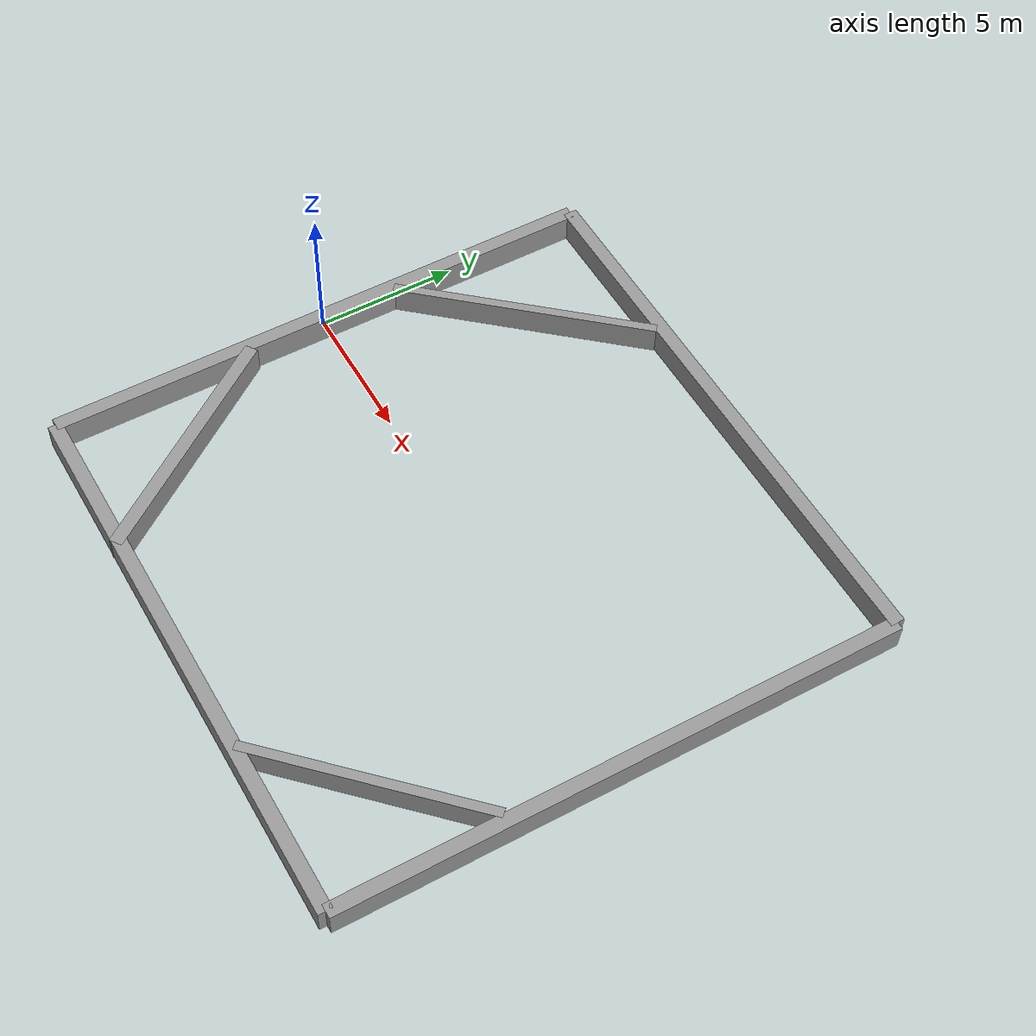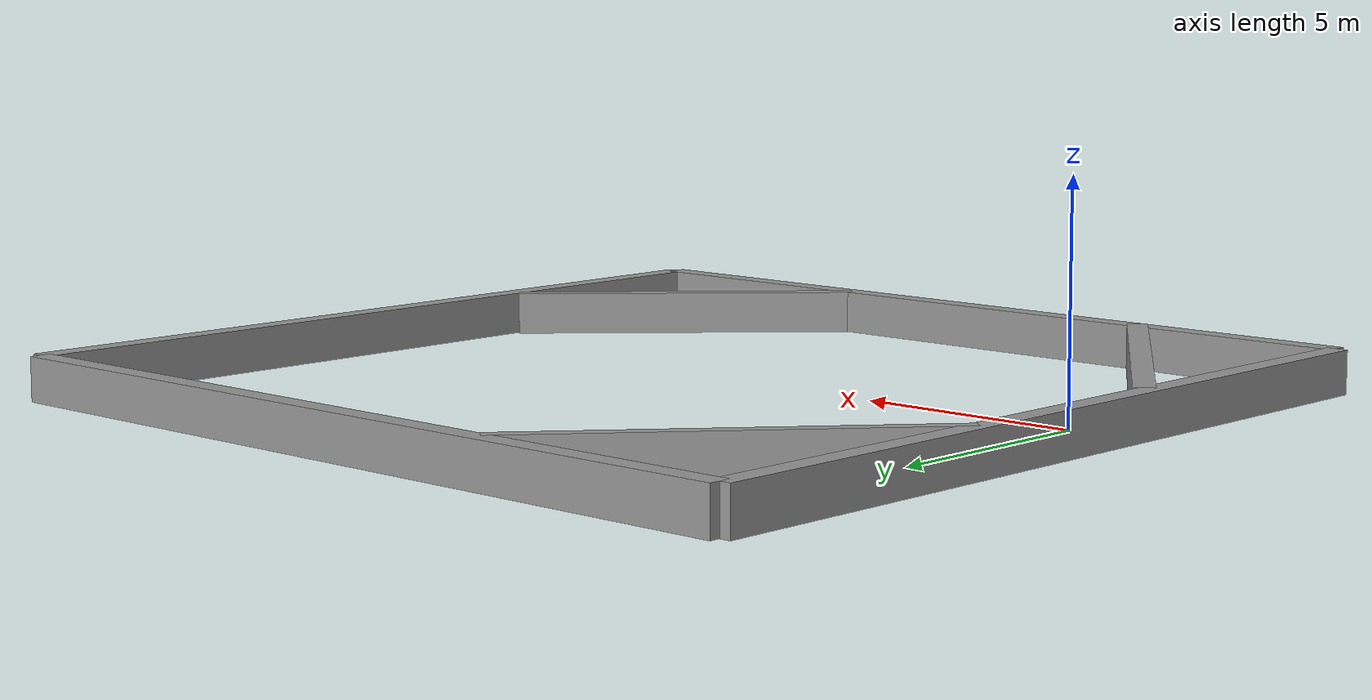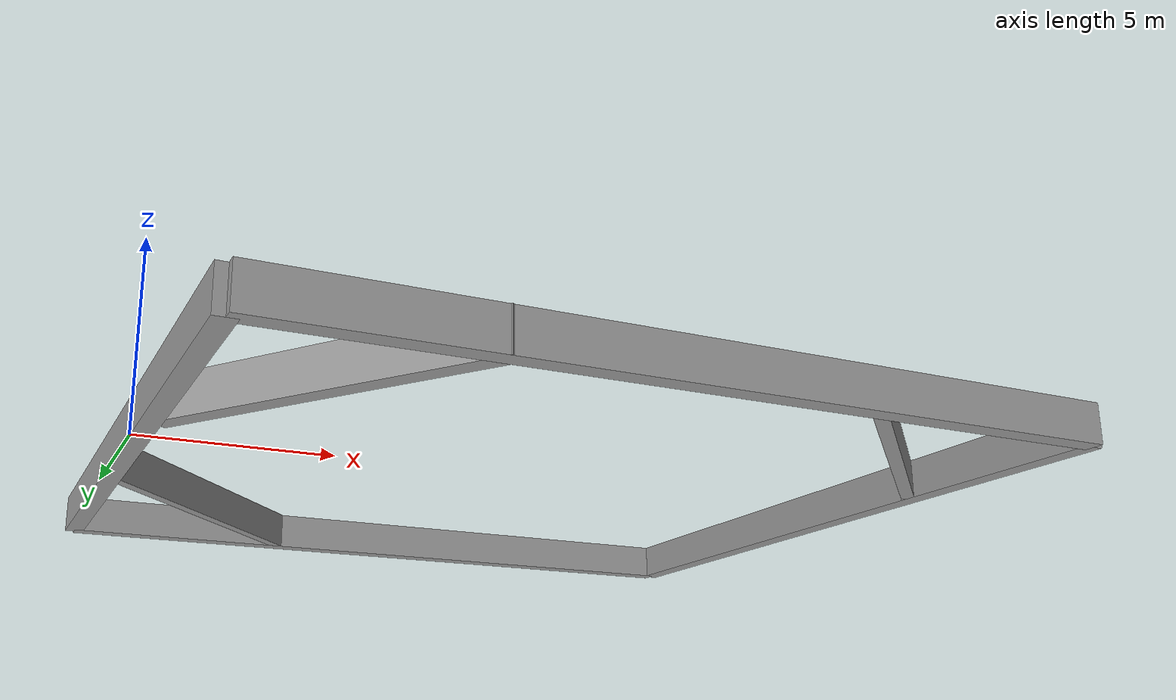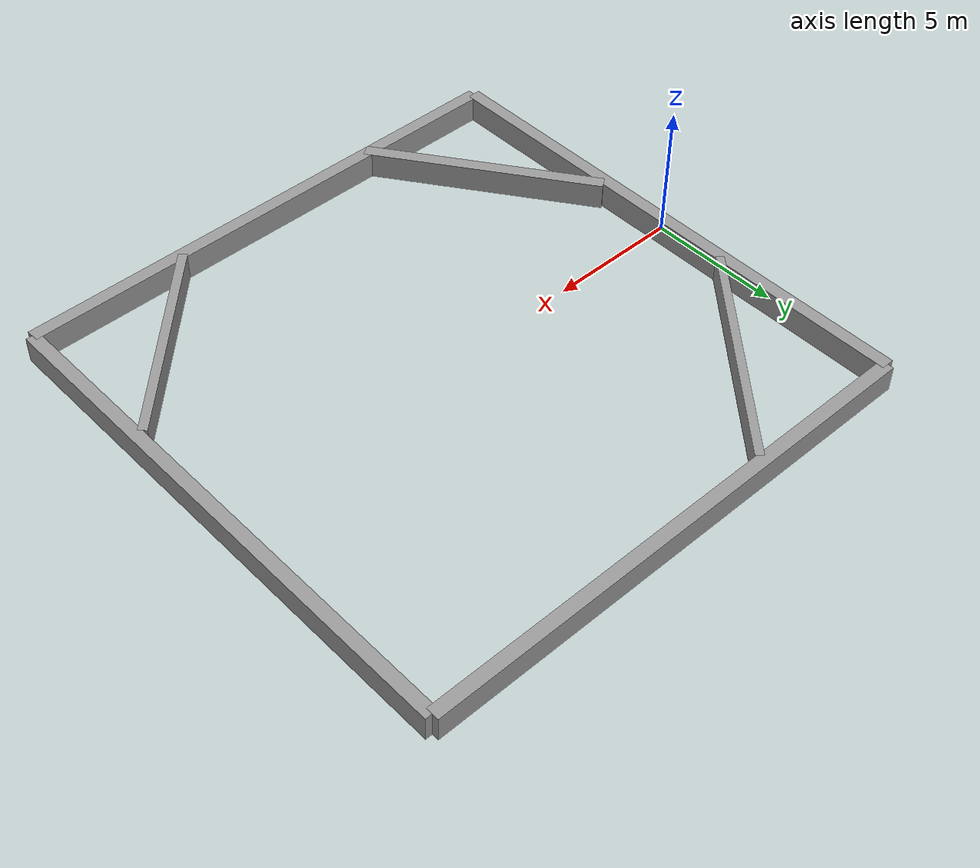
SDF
<?xml version='1.0'?>
<sdf version='1.6'>
  <model name='room_simplestOne2'>
    <link name='link'>
      <pose frame=''>-0.003638 0.015359 -0 0 -0 0</pose>
      <inertial>
        <mass>20.0619</mass>
        <inertia>
          <ixx>674.551</ixx>
          <ixy>0</ixy>
          <ixz>0</ixz>
          <iyy>3.34366</iyy>
          <iyz>0</iyz>
          <izz>674.551</izz>
        </inertia>
        <pose frame=''>0 0 0 0 -0 0</pose>
      </inertial>
      <self_collide>0</self_collide>
      <kinematic>0</kinematic>
      <visual name='visual'>
        <geometry>
          <box>
            <size>0.5 20 1</size>
          </box>
        </geometry>
        <material>
          <script>
            <name>Gazebo/Grey</name>
            <uri>file://media/materials/scripts/gazebo.material</uri>
          </script>
          <ambient>0.3 0.3 0.3 1</ambient>
          <diffuse>0.7 0.7 0.7 1</diffuse>
          <specular>0.01 0.01 0.01 1</specular>
          <emissive>0 0 0 1</emissive>
        </material>
        <pose frame=''>0 0 0 0 -0 0</pose>
        <transparency>0</transparency>
        <cast_shadows>1</cast_shadows>
      </visual>
      <collision name='collision'>
        <laser_retro>0</laser_retro>
        <max_contacts>10</max_contacts>
        <pose frame=''>0 0 0 0 -0 0</pose>
        <geometry>
          <box>
            <size>0.5 20 1</size>
          </box>
        </geometry>
        <surface>
          <friction>
            <ode>
              <mu>1</mu>
              <mu2>1</mu2>
              <fdir1>0 0 0</fdir1>
              <slip1>0</slip1>
              <slip2>0</slip2>
            </ode>
            <torsional>
              <coefficient>1</coefficient>
              <patch_radius>0</patch_radius>
              <surface_radius>0</surface_radius>
              <use_patch_radius>1</use_patch_radius>
              <ode>
                <slip>0</slip>
              </ode>
            </torsional>
          </friction>
          <bounce>
            <restitution_coefficient>0</restitution_coefficient>
            <threshold>1e+06</threshold>
          </bounce>
          <contact>
            <collide_without_contact>0</collide_without_contact>
            <collide_without_contact_bitmask>1</collide_without_contact_bitmask>
            <collide_bitmask>1</collide_bitmask>
            <ode>
              <soft_cfm>0</soft_cfm>
              <soft_erp>0.2</soft_erp>
              <kp>1e+13</kp>
              <kd>1</kd>
              <max_vel>0.01</max_vel>
              <min_depth>0</min_depth>
            </ode>
            <bullet>
              <split_impulse>1</split_impulse>
              <split_impulse_penetration_threshold>-0.01</split_impulse_penetration_threshold>
              <soft_cfm>0</soft_cfm>
              <soft_erp>0.2</soft_erp>
              <kp>1e+13</kp>
              <kd>1</kd>
            </bullet>
          </contact>
        </surface>
      </collision>
    </link>
    <link name='link_0'>
      <pose frame=''>10 10 0 0 -0 0</pose>
      <inertial>
        <mass>20</mass>
        <inertia>
          <ixx>3.18262</ixx>
          <ixy>0</ixy>
          <ixz>0</ixz>
          <iyy>581.858</iyy>
          <iyz>0</iyz>
          <izz>581.858</izz>
        </inertia>
        <pose frame=''>0 0 0 0 -0 0</pose>
      </inertial>
      <self_collide>0</self_collide>
      <kinematic>0</kinematic>
      <visual name='visual'>
        <pose frame=''>0 0 0 0 -0 0</pose>
        <geometry>
          <box>
            <size>20 0.5 1</size>
          </box>
        </geometry>
        <material>
          <lighting>1</lighting>
          <script>
            <uri>file://media/materials/scripts/gazebo.material</uri>
            <name>Gazebo/Grey</name>
          </script>
          <ambient>0.3 0.3 0.3 1</ambient>
          <diffuse>0.7 0.7 0.7 1</diffuse>
          <specular>0.01 0.01 0.01 1</specular>
          <emissive>0 0 0 1</emissive>
        </material>
        <transparency>0</transparency>
        <cast_shadows>1</cast_shadows>
      </visual>
      <collision name='collision'>
        <laser_retro>0</laser_retro>
        <max_contacts>10</max_contacts>
        <pose frame=''>0 0 0 0 -0 0</pose>
        <geometry>
          <box>
            <size>20 0.5 1</size>
          </box>
        </geometry>
        <surface>
          <friction>
            <ode>
              <mu>1</mu>
              <mu2>1</mu2>
              <fdir1>0 0 0</fdir1>
              <slip1>0</slip1>
              <slip2>0</slip2>
            </ode>
            <torsional>
              <coefficient>1</coefficient>
              <patch_radius>0</patch_radius>
              <surface_radius>0</surface_radius>
              <use_patch_radius>1</use_patch_radius>
              <ode>
                <slip>0</slip>
              </ode>
            </torsional>
          </friction>
          <bounce>
            <restitution_coefficient>0</restitution_coefficient>
            <threshold>1e+06</threshold>
          </bounce>
          <contact>
            <collide_without_contact>0</collide_without_contact>
            <collide_without_contact_bitmask>1</collide_without_contact_bitmask>
            <collide_bitmask>1</collide_bitmask>
            <ode>
              <soft_cfm>0</soft_cfm>
              <soft_erp>0.2</soft_erp>
              <kp>1e+13</kp>
              <kd>1</kd>
              <max_vel>0.01</max_vel>
              <min_depth>0</min_depth>
            </ode>
            <bullet>
              <split_impulse>1</split_impulse>
              <split_impulse_penetration_threshold>-0.01</split_impulse_penetration_threshold>
              <soft_cfm>0</soft_cfm>
              <soft_erp>0.2</soft_erp>
              <kp>1e+13</kp>
              <kd>1</kd>
            </bullet>
          </contact>
        </surface>
      </collision>
    </link>
    <link name='link_0_0'>
      <pose frame=''>16.8141 -6.98048 1.8e-05 0 -0 -0.780375</pose>
      <inertial>
        <mass>2.85253</mass>
        <inertia>
          <ixx>16.9303</ixx>
          <ixy>0</ixy>
          <ixz>0</ixz>
          <iyy>0.265255</iyy>
          <iyz>0</iyz>
          <izz>16.7201</izz>
        </inertia>
        <pose frame=''>0 0 0 0 -0 0</pose>
      </inertial>
      <self_collide>0</self_collide>
      <kinematic>0</kinematic>
      <visual name='visual'>
        <pose frame=''>0 0 0 0 -0 0</pose>
        <geometry>
          <box>
            <size>0.340406 8.37986 1</size>
          </box>
        </geometry>
        <material>
          <lighting>1</lighting>
          <script>
            <uri>file://media/materials/scripts/gazebo.material</uri>
            <name>Gazebo/Grey</name>
          </script>
          <ambient>0.3 0.3 0.3 1</ambient>
          <diffuse>0.7 0.7 0.7 1</diffuse>
          <specular>0.01 0.01 0.01 1</specular>
          <emissive>0 0 0 1</emissive>
        </material>
        <transparency>0</transparency>
        <cast_shadows>1</cast_shadows>
      </visual>
      <collision name='collision'>
        <laser_retro>0</laser_retro>
        <max_contacts>10</max_contacts>
        <pose frame=''>0 0 0 0 -0 0</pose>
        <geometry>
          <box>
            <size>0.340406 8.37986 1</size>
          </box>
        </geometry>
        <surface>
          <friction>
            <ode>
              <mu>1</mu>
              <mu2>1</mu2>
              <fdir1>0 0 0</fdir1>
              <slip1>0</slip1>
              <slip2>0</slip2>
            </ode>
            <torsional>
              <coefficient>1</coefficient>
              <patch_radius>0</patch_radius>
              <surface_radius>0</surface_radius>
              <use_patch_radius>1</use_patch_radius>
              <ode>
                <slip>0</slip>
              </ode>
            </torsional>
          </friction>
          <bounce>
            <restitution_coefficient>0</restitution_coefficient>
            <threshold>1e+06</threshold>
          </bounce>
          <contact>
            <collide_without_contact>0</collide_without_contact>
            <collide_without_contact_bitmask>1</collide_without_contact_bitmask>
            <collide_bitmask>1</collide_bitmask>
            <ode>
              <soft_cfm>0</soft_cfm>
              <soft_erp>0.2</soft_erp>
              <kp>1e+13</kp>
              <kd>1</kd>
              <max_vel>0.01</max_vel>
              <min_depth>0</min_depth>
            </ode>
            <bullet>
              <split_impulse>1</split_impulse>
              <split_impulse_penetration_threshold>-0.01</split_impulse_penetration_threshold>
              <soft_cfm>0</soft_cfm>
              <soft_erp>0.2</soft_erp>
              <kp>1e+13</kp>
              <kd>1</kd>
            </bullet>
          </contact>
        </surface>
      </collision>
    </link>
    <link name='link_0_1_clone'>
      <pose frame=''>3.12077 6.2995 1.2e-05 -2e-06 0 0.858359</pose>
      <inertial>
        <mass>2.88323</mass>
        <inertia>
          <ixx>0.263267</ixx>
          <ixy>0</ixy>
          <ixz>0</ixz>
          <iyy>21.1075</iyy>
          <iyz>0</iyz>
          <izz>20.8902</izz>
        </inertia>
        <pose frame=''>0 0 0 0 -0 0</pose>
      </inertial>
      <self_collide>0</self_collide>
      <kinematic>0</kinematic>
      <visual name='visual_0'>
        <pose frame=''>0 0 0 0 -0 0</pose>
        <geometry>
          <box>
            <size>9.3193 0.309476 1</size>
          </box>
        </geometry>
        <material>
          <lighting>1</lighting>
          <script>
            <uri>file://media/materials/scripts/gazebo.material</uri>
            <name>Gazebo/Grey</name>
          </script>
          <ambient>0.3 0.3 0.3 1</ambient>
          <diffuse>0.7 0.7 0.7 1</diffuse>
          <specular>0.01 0.01 0.01 1</specular>
          <emissive>0 0 0 1</emissive>
          <shader type='pixel'/>
        </material>
        <transparency>0</transparency>
        <cast_shadows>1</cast_shadows>
      </visual>
      <collision name='collision'>
        <laser_retro>0</laser_retro>
        <max_contacts>10</max_contacts>
        <pose frame=''>0 0 0 0 -0 0</pose>
        <geometry>
          <box>
            <size>9.3193 0.309476 1</size>
          </box>
        </geometry>
        <surface>
          <friction>
            <ode>
              <mu>1</mu>
              <mu2>1</mu2>
              <fdir1>0 0 0</fdir1>
              <slip1>0</slip1>
              <slip2>0</slip2>
            </ode>
            <torsional>
              <coefficient>1</coefficient>
              <patch_radius>0</patch_radius>
              <surface_radius>0</surface_radius>
              <use_patch_radius>1</use_patch_radius>
              <ode>
                <slip>0</slip>
              </ode>
            </torsional>
          </friction>
          <bounce>
            <restitution_coefficient>0</restitution_coefficient>
            <threshold>1e+06</threshold>
          </bounce>
          <contact>
            <collide_without_contact>0</collide_without_contact>
            <collide_without_contact_bitmask>1</collide_without_contact_bitmask>
            <collide_bitmask>1</collide_bitmask>
            <ode>
              <soft_cfm>0</soft_cfm>
              <soft_erp>0.2</soft_erp>
              <kp>1e+13</kp>
              <kd>1</kd>
              <max_vel>0.01</max_vel>
              <min_depth>0</min_depth>
            </ode>
            <bullet>
              <split_impulse>1</split_impulse>
              <split_impulse_penetration_threshold>-0.01</split_impulse_penetration_threshold>
              <soft_cfm>0</soft_cfm>
              <soft_erp>0.2</soft_erp>
              <kp>1e+13</kp>
              <kd>1</kd>
            </bullet>
          </contact>
        </surface>
      </collision>
    </link>
    <link name='link_1'>
      <pose frame=''>20 -0 0 0 -0 0</pose>
      <inertial>
        <mass>18.076</mass>
        <inertia>
          <ixx>493.69</ixx>
          <ixy>0</ixy>
          <ixz>0</ixz>
          <iyy>3.01267</iyy>
          <iyz>0</iyz>
          <izz>493.69</izz>
        </inertia>
        <pose frame=''>0 0 0 0 -0 0</pose>
      </inertial>
      <self_collide>0</self_collide>
      <kinematic>0</kinematic>
      <visual name='visual'>
        <pose frame=''>0 0 0 0 -0 0</pose>
        <geometry>
          <box>
            <size>0.5 20 1</size>
          </box>
        </geometry>
        <material>
          <lighting>1</lighting>
          <script>
            <uri>file://media/materials/scripts/gazebo.material</uri>
            <name>Gazebo/Grey</name>
          </script>
          <ambient>0.3 0.3 0.3 1</ambient>
          <diffuse>0.7 0.7 0.7 1</diffuse>
          <specular>0.01 0.01 0.01 1</specular>
          <emissive>0 0 0 1</emissive>
        </material>
        <transparency>0</transparency>
        <cast_shadows>1</cast_shadows>
      </visual>
      <collision name='collision'>
        <laser_retro>0</laser_retro>
        <max_contacts>10</max_contacts>
        <pose frame=''>0 0 0 0 -0 0</pose>
        <geometry>
          <box>
            <size>0.5 20 1</size>
          </box>
        </geometry>
        <surface>
          <friction>
            <ode>
              <mu>1</mu>
              <mu2>1</mu2>
              <fdir1>0 0 0</fdir1>
              <slip1>0</slip1>
              <slip2>0</slip2>
            </ode>
            <torsional>
              <coefficient>1</coefficient>
              <patch_radius>0</patch_radius>
              <surface_radius>0</surface_radius>
              <use_patch_radius>1</use_patch_radius>
              <ode>
                <slip>0</slip>
              </ode>
            </torsional>
          </friction>
          <bounce>
            <restitution_coefficient>0</restitution_coefficient>
            <threshold>1e+06</threshold>
          </bounce>
          <contact>
            <collide_without_contact>0</collide_without_contact>
            <collide_without_contact_bitmask>1</collide_without_contact_bitmask>
            <collide_bitmask>1</collide_bitmask>
            <ode>
              <soft_cfm>0</soft_cfm>
              <soft_erp>0.2</soft_erp>
              <kp>1e+13</kp>
              <kd>1</kd>
              <max_vel>0.01</max_vel>
              <min_depth>0</min_depth>
            </ode>
            <bullet>
              <split_impulse>1</split_impulse>
              <split_impulse_penetration_threshold>-0.01</split_impulse_penetration_threshold>
              <soft_cfm>0</soft_cfm>
              <soft_erp>0.2</soft_erp>
              <kp>1e+13</kp>
              <kd>1</kd>
            </bullet>
          </contact>
        </surface>
      </collision>
    </link>
    <link name='link_2'>
      <pose frame=''>10 -10 -0 0 -0 0</pose>
      <inertial>
        <mass>18.8281</mass>
        <inertia>
          <ixx>3.13802</ixx>
          <ixy>0</ixy>
          <ixz>0</ixz>
          <iyy>557.78</iyy>
          <iyz>0</iyz>
          <izz>557.78</izz>
        </inertia>
        <pose frame=''>0 0 0 0 -0 0</pose>
      </inertial>
      <self_collide>0</self_collide>
      <kinematic>0</kinematic>
      <visual name='visual'>
        <pose frame=''>0 0 0 0 -0 0</pose>
        <geometry>
          <box>
            <size>20 0.5 1</size>
          </box>
        </geometry>
        <material>
          <lighting>1</lighting>
          <script>
            <uri>file://media/materials/scripts/gazebo.material</uri>
            <name>Gazebo/Grey</name>
          </script>
          <ambient>0.3 0.3 0.3 1</ambient>
          <diffuse>0.7 0.7 0.7 1</diffuse>
          <specular>0.01 0.01 0.01 1</specular>
          <emissive>0 0 0 1</emissive>
        </material>
        <transparency>0</transparency>
        <cast_shadows>1</cast_shadows>
      </visual>
      <collision name='collision'>
        <laser_retro>0</laser_retro>
        <max_contacts>10</max_contacts>
        <pose frame=''>0 0 0 0 -0 0</pose>
        <geometry>
          <box>
            <size>20 0.5 1</size>
          </box>
        </geometry>
        <surface>
          <friction>
            <ode>
              <mu>1</mu>
              <mu2>1</mu2>
              <fdir1>0 0 0</fdir1>
              <slip1>0</slip1>
              <slip2>0</slip2>
            </ode>
            <torsional>
              <coefficient>1</coefficient>
              <patch_radius>0</patch_radius>
              <surface_radius>0</surface_radius>
              <use_patch_radius>1</use_patch_radius>
              <ode>
                <slip>0</slip>
              </ode>
            </torsional>
          </friction>
          <bounce>
            <restitution_coefficient>0</restitution_coefficient>
            <threshold>1e+06</threshold>
          </bounce>
          <contact>
            <collide_without_contact>0</collide_without_contact>
            <collide_without_contact_bitmask>1</collide_without_contact_bitmask>
            <collide_bitmask>1</collide_bitmask>
            <ode>
              <soft_cfm>0</soft_cfm>
              <soft_erp>0.2</soft_erp>
              <kp>1e+13</kp>
              <kd>1</kd>
              <max_vel>0.01</max_vel>
              <min_depth>0</min_depth>
            </ode>
            <bullet>
              <split_impulse>1</split_impulse>
              <split_impulse_penetration_threshold>-0.01</split_impulse_penetration_threshold>
              <soft_cfm>0</soft_cfm>
              <soft_erp>0.2</soft_erp>
              <kp>1e+13</kp>
              <kd>1</kd>
            </bullet>
          </contact>
        </surface>
      </collision>
    </link>
    <link name='link_7'>
      <pose frame=''>2.76455 -6.47116 1.1e-05 -1e-06 -0 0.617071</pose>
      <inertial>
        <mass>4.32223</mass>
        <inertia>
          <ixx>29.5042</ixx>
          <ixy>0</ixy>
          <ixz>0</ixz>
          <iyy>0.443346</iyy>
          <iyz>0</iyz>
          <izz>29.2272</izz>
        </inertia>
        <pose frame=''>0 0 0 0 -0 0</pose>
      </inertial>
      <self_collide>0</self_collide>
      <kinematic>0</kinematic>
      <visual name='visual'>
        <pose frame=''>0 0 0 0 -0 0</pose>
        <geometry>
          <box>
            <size>0.480513 8.99524 1</size>
          </box>
        </geometry>
        <material>
          <lighting>1</lighting>
          <script>
            <uri>file://media/materials/scripts/gazebo.material</uri>
            <name>Gazebo/Grey</name>
          </script>
          <ambient>0.3 0.3 0.3 1</ambient>
          <diffuse>0.7 0.7 0.7 1</diffuse>
          <specular>0.01 0.01 0.01 1</specular>
          <emissive>0 0 0 1</emissive>
        </material>
        <transparency>0</transparency>
        <cast_shadows>1</cast_shadows>
      </visual>
      <collision name='collision'>
        <laser_retro>0</laser_retro>
        <max_contacts>10</max_contacts>
        <pose frame=''>0 0 0 0 -0 0</pose>
        <geometry>
          <box>
            <size>0.480513 8.99524 1</size>
          </box>
        </geometry>
        <surface>
          <friction>
            <ode>
              <mu>1</mu>
              <mu2>1</mu2>
              <fdir1>0 0 0</fdir1>
              <slip1>0</slip1>
              <slip2>0</slip2>
            </ode>
            <torsional>
              <coefficient>1</coefficient>
              <patch_radius>0</patch_radius>
              <surface_radius>0</surface_radius>
              <use_patch_radius>1</use_patch_radius>
              <ode>
                <slip>0</slip>
              </ode>
            </torsional>
          </friction>
          <bounce>
            <restitution_coefficient>0</restitution_coefficient>
            <threshold>1e+06</threshold>
          </bounce>
          <contact>
            <collide_without_contact>0</collide_without_contact>
            <collide_without_contact_bitmask>1</collide_without_contact_bitmask>
            <collide_bitmask>1</collide_bitmask>
            <ode>
              <soft_cfm>0</soft_cfm>
              <soft_erp>0.2</soft_erp>
              <kp>1e+13</kp>
              <kd>1</kd>
              <max_vel>0.01</max_vel>
              <min_depth>0</min_depth>
            </ode>
            <bullet>
              <split_impulse>1</split_impulse>
              <split_impulse_penetration_threshold>-0.01</split_impulse_penetration_threshold>
              <soft_cfm>0</soft_cfm>
              <soft_erp>0.2</soft_erp>
              <kp>1e+13</kp>
              <kd>1</kd>
            </bullet>
          </contact>
        </surface>
      </collision>
    </link>
    <joint name='link_0_0_JOINT_0' type='fixed'>
      <parent>link_0_0</parent>
      <child>link_2</child>
      <pose frame=''>0 0 0 0 -0 0</pose>
      <physics>
        <ode>
          <limit>
            <cfm>0</cfm>
            <erp>0.2</erp>
          </limit>
          <suspension>
            <cfm>0</cfm>
            <erp>0.2</erp>
          </suspension>
        </ode>
      </physics>
    </joint>
    <joint name='link_0_0_JOINT_3' type='revolute'>
      <parent>link_0_0</parent>
      <child>link_1</child>
      <pose frame=''>0 0 0 0 -0 0</pose>
      <axis>
        <xyz>1 0 0</xyz>
        <use_parent_model_frame>0</use_parent_model_frame>
        <limit>
          <lower>-1.79769e+308</lower>
          <upper>1.79769e+308</upper>
          <effort>-1</effort>
          <velocity>-1</velocity>
        </limit>
        <dynamics>
          <spring_reference>0</spring_reference>
          <spring_stiffness>0</spring_stiffness>
          <damping>0</damping>
          <friction>0</friction>
        </dynamics>
      </axis>
      <physics>
        <ode>
          <limit>
            <cfm>0</cfm>
            <erp>0.2</erp>
          </limit>
          <suspension>
            <cfm>0</cfm>
            <erp>0.2</erp>
          </suspension>
        </ode>
      </physics>
    </joint>
    <joint name='link_0_JOINT_0' type='revolute'>
      <parent>link_0</parent>
      <child>link_0_1_clone</child>
      <pose frame=''>0 0 0 0 -0 0</pose>
      <axis>
        <xyz>1 0 0</xyz>
        <use_parent_model_frame>0</use_parent_model_frame>
        <limit>
          <lower>-1.79769e+308</lower>
          <upper>1.79769e+308</upper>
          <effort>-1</effort>
          <velocity>-1</velocity>
        </limit>
        <dynamics>
          <spring_reference>0</spring_reference>
          <spring_stiffness>0</spring_stiffness>
          <damping>0</damping>
          <friction>0</friction>
        </dynamics>
      </axis>
      <physics>
        <ode>
          <limit>
            <cfm>0</cfm>
            <erp>0.2</erp>
          </limit>
          <suspension>
            <cfm>0</cfm>
            <erp>0.2</erp>
          </suspension>
        </ode>
      </physics>
    </joint>
    <joint name='link_0_JOINT_1' type='screw'>
      <parent>link_0</parent>
      <child>link_1</child>
      <pose frame=''>0 0 0 0 -0 0</pose>
      <axis>
        <xyz>1 0 0</xyz>
        <use_parent_model_frame>0</use_parent_model_frame>
        <limit>
          <lower>-1.79769e+308</lower>
          <upper>1.79769e+308</upper>
          <effort>-1</effort>
          <velocity>-1</velocity>
        </limit>
        <dynamics>
          <spring_reference>0</spring_reference>
          <spring_stiffness>0</spring_stiffness>
          <damping>0</damping>
          <friction>0</friction>
        </dynamics>
      </axis>
      <physics>
        <ode>
          <limit>
            <cfm>0</cfm>
            <erp>0.2</erp>
          </limit>
          <suspension>
            <cfm>0</cfm>
            <erp>0.2</erp>
          </suspension>
        </ode>
      </physics>
    </joint>
    <joint name='link_0_JOINT_2' type='screw'>
      <parent>link_0</parent>
      <child>link_2</child>
      <pose frame=''>0 0 0 0 -0 0</pose>
      <axis>
        <xyz>1 0 0</xyz>
        <use_parent_model_frame>0</use_parent_model_frame>
        <limit>
          <lower>-1.79769e+308</lower>
          <upper>1.79769e+308</upper>
          <effort>-1</effort>
          <velocity>-1</velocity>
        </limit>
        <dynamics>
          <spring_reference>0</spring_reference>
          <spring_stiffness>0</spring_stiffness>
          <damping>0</damping>
          <friction>0</friction>
        </dynamics>
      </axis>
      <physics>
        <ode>
          <limit>
            <cfm>0</cfm>
            <erp>0.2</erp>
          </limit>
          <suspension>
            <cfm>0</cfm>
            <erp>0.2</erp>
          </suspension>
        </ode>
      </physics>
    </joint>
    <joint name='link_7_JOINT_2' type='revolute'>
      <parent>link_7</parent>
      <child>link</child>
      <pose frame=''>0 0 0 0 -0 0</pose>
      <axis>
        <xyz>1 0 0</xyz>
        <use_parent_model_frame>0</use_parent_model_frame>
        <limit>
          <lower>-1.79769e+308</lower>
          <upper>1.79769e+308</upper>
          <effort>-1</effort>
          <velocity>-1</velocity>
        </limit>
        <dynamics>
          <spring_reference>0</spring_reference>
          <spring_stiffness>0</spring_stiffness>
          <damping>0</damping>
          <friction>0</friction>
        </dynamics>
      </axis>
      <physics>
        <ode>
          <limit>
            <cfm>0</cfm>
            <erp>0.2</erp>
          </limit>
          <suspension>
            <cfm>0</cfm>
            <erp>0.2</erp>
          </suspension>
        </ode>
      </physics>
    </joint>
    <joint name='link_7_JOINT_8' type='fixed'>
      <parent>link_7</parent>
      <child>link</child>
      <pose frame=''>0 0 0 0 -0 0</pose>
      <physics>
        <ode>
          <limit>
            <cfm>0</cfm>
            <erp>0.2</erp>
          </limit>
          <suspension>
            <cfm>0</cfm>
            <erp>0.2</erp>
          </suspension>
        </ode>
      </physics>
    </joint>
    <joint name='link_JOINT_0' type='screw'>
      <parent>link</parent>
      <child>link_0</child>
      <pose frame=''>0 0 0 0 -0 0</pose>
      <axis>
        <xyz>1 0 0</xyz>
        <use_parent_model_frame>0</use_parent_model_frame>
        <limit>
          <lower>-1.79769e+308</lower>
          <upper>1.79769e+308</upper>
          <effort>-1</effort>
          <velocity>-1</velocity>
        </limit>
        <dynamics>
          <spring_reference>0</spring_reference>
          <spring_stiffness>0</spring_stiffness>
          <damping>0</damping>
          <friction>0</friction>
        </dynamics>
      </axis>
      <physics>
        <ode>
          <limit>
            <cfm>0</cfm>
            <erp>0.2</erp>
          </limit>
          <suspension>
            <cfm>0</cfm>
            <erp>0.2</erp>
          </suspension>
        </ode>
      </physics>
    </joint>
    <static>0</static>
    <allow_auto_disable>1</allow_auto_disable>
  </model>
</sdf>
